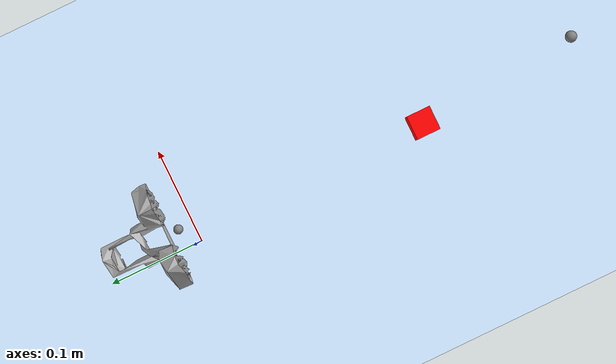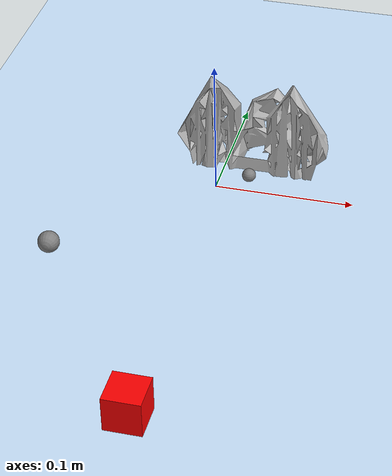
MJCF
<?xml version="1.0" ?>
<mujoco model="ultra_simple">
  <compiler angle="radian" meshdir="/home/ben/all_projects/SO-ARM100/Simulation/SO101/assets" autolimits="true"/>

  <option gravity="0 0 -9.81" />

  <default>
    <default class="so101_new_calib">
      <joint damping="1" frictionloss="0.1" armature="0.005"/>
      <position kp="50"/>
      <default class="visual">
        <geom type="mesh" contype="0" conaffinity="0" group="2"/>
      </default>
      <default class="collision">
        <geom group="3" contype="1" conaffinity="1"/>
      </default>
    </default>
    <default class="sts3215">
      <geom contype="0" conaffinity="0"/>
      <joint damping="0.60" frictionloss="0.052" armature="0.028"/>
      <position kp="17.8"/>
    </default>
  </default>

  <asset>
    <!-- Minimal required meshes and materials -->
    <mesh file="rotation_pitch_so101_v1.stl"/>
    <mesh file="moving_jaw_so101_v1.stl"/>
    <mesh file="sts3215_03a_v1.stl"/>
    <mesh file="motor_holder_so101_wrist_v1.stl"/>
    <mesh file="wrist_roll_follower_so101_v1.stl"/>
    <mesh file="base_so101_v2.stl"/>
    <mesh file="under_arm_so101_v1.stl"/>
    <mesh file="wrist_roll_pitch_so101_v2.stl"/>
    <mesh file="waveshare_mounting_plate_so101_v2.stl"/>
    <mesh file="sts3215_03a_no_horn_v1.stl"/>
    <mesh file="motor_holder_so101_base_v1.stl"/>
    <mesh file="base_motor_holder_so101_v1.stl"/>
    <mesh file="upper_arm_so101_v1.stl"/>
    <material name="robot_mat" rgba="0.7 0.7 0.7 1"/>
  </asset>

  <worldbody>
    <!-- Ground -->
    <geom name="floor" type="plane" size="2 2 0.1" rgba="0.8 0.9 1 1" contype="1" conaffinity="1" />

    <!-- Robot base only (ultra minimal) -->
    <body name="base" pos="0 0 -0.03" quat="1 0 0 0" childclass="so101_new_calib">
      <inertial pos="0.020739 0.00204287 0.065966" mass="0.147" fullinertia="0.000136117 0.000114686 0.000130364 4.59787e-07 9.75275e-08 -4.97151e-06"/>
      <geom type="mesh" class="visual" pos="0.0207909 0.0221255 0.0300817" mesh="base_so101_v2" material="robot_mat"/>
      <site name="base" pos="0.020791 0.0157608 0.0324817"/>

      <body name="shoulder" pos="0.0207909 -0.0230745 0.0948817" quat="7.88629e-16 -0.707107 -0.707107 7.69003e-16">
        <joint axis="0 0 1" name="1" type="hinge" range="-1.9 1.9" class="sts3215"/>
        <inertial pos="-0.0307604 -1.66727e-05 -0.0252713" mass="0.100006" fullinertia="8.3759e-05 8.10403e-05 2.39783e-05 7.55525e-08 -1.16342e-06 1.54663e-07"/>
        <geom type="mesh" class="collision" pos="-0.0303992 0.000422241 -0.0417" quat="0.5 0.5 0.5 -0.5" mesh="sts3215_03a_v1" material="robot_mat"/>

        <body name="upper_arm" pos="-0.0303992 -0.0182778 -0.0542" quat="0.5 -0.5 -0.5 -0.5">
          <joint axis="0 0 1" name="2" type="hinge" range="-1.7 1.7" class="sts3215"/>
          <inertial pos="-0.0898471 -0.00838224 0.0184089" mass="0.103" fullinertia="4.08002e-05 0.000147318 0.000142487 -1.97819e-05 -4.03016e-08 8.97326e-09"/>
          <geom type="mesh" class="collision" pos="-0.065085 0.012 0.0182" mesh="upper_arm_so101_v1" material="robot_mat"/>

          <body name="lower_arm" pos="-0.11257 -0.028 0" quat="0.707107 0 0 0.707107">
            <joint axis="0 0 1" name="3" type="hinge" range="-1.7 1.5" class="sts3215"/>
            <inertial pos="-0.0980701 0.00324376 0.0182831" mass="0.104" fullinertia="2.87438e-05 0.000159844 0.00014529 7.41152e-06 1.26409e-06 -4.90188e-08"/>
            <geom type="mesh" class="collision" pos="-0.0648499 -0.032 0.0182" mesh="under_arm_so101_v1" material="robot_mat"/>

            <body name="wrist" pos="-0.1349 0.0052 0" quat="0.707107 0 0 -0.707107">
              <joint axis="0 0 1" name="4" type="hinge" range="-1.6 1.6" class="sts3215"/>
              <inertial pos="-0.000103312 -0.0386143 0.0281156" mass="0.079" fullinertia="3.68263e-05 2.5391e-05 2.1e-05 1.7893e-08 -5.28128e-08 3.6412e-06"/>
              <geom type="mesh" class="collision" pos="0 -0.028 0.0181" quat="0.5 -0.5 -0.5 -0.5" mesh="wrist_roll_pitch_so101_v2" material="robot_mat"/>

              <body name="gripper" pos="0 -0.0611 0.0181" quat="0 0 -0.707107 -0.707107">
                <joint axis="0 0 1" name="5" type="hinge" range="-2.7 2.7" class="sts3215"/>
                <inertial pos="0.000213627 0.000245138 -0.025187" mass="0.087" fullinertia="2.75087e-05 4.33657e-05 3.45059e-05 -3.35241e-07 -5.7352e-06 -5.17847e-08"/>
                <geom type="mesh" class="collision" pos="0 0 0.001" mesh="wrist_roll_follower_so101_v1" material="robot_mat"/>
                <site name="gripper" pos="0 0 -0.095"/>

                <body name="moving_jaw" pos="0.0202 0.0188 -0.0234" quat="0.707107 0.707107 0 0">
                  <joint axis="0 0 1" name="6" type="hinge" range="-0.17 1.7" class="sts3215"/>
                  <inertial pos="-0.00157495 -0.0300244 0.0192755" mass="0.012" fullinertia="6.61427e-06 1.89032e-06 5.28738e-06 -3.19807e-07 -5.90717e-09 -1.09945e-07"/>
                  <geom type="mesh" class="collision" pos="0 0 0.0189" mesh="moving_jaw_so101_v1" material="robot_mat"/>
                </body>
              </body>
            </body>
          </body>
        </body>
      </body>
    </body>

    <!-- Simple cube -->
    <body name="cube" pos="0.01 -0.25 0.02">
        <joint name="cube_joint" type="free" />
        <inertial pos="0 0 0" mass="0.05" diaginertia="0.0008 0.0008 0.0008" />
        <geom name="cube_geom" type="box" size="0.0125 0.0125 0.0125" rgba="1 0 0 1" contype="1" conaffinity="1"/>
    </body>
  </worldbody>

  <actuator>
    <position class="sts3215" name="1" joint="1" forcerange="-3.35 3.35"/>
    <position class="sts3215" name="2" joint="2" forcerange="-3.35 3.35"/>
    <position class="sts3215" name="3" joint="3" forcerange="-3.35 3.35"/>
    <position class="sts3215" name="4" joint="4" forcerange="-3.35 3.35"/>
    <position class="sts3215" name="5" joint="5" forcerange="-3.35 3.35"/>
    <position class="sts3215" name="6" joint="6" forcerange="-3.35 3.35"/>
  </actuator>

</mujoco>
